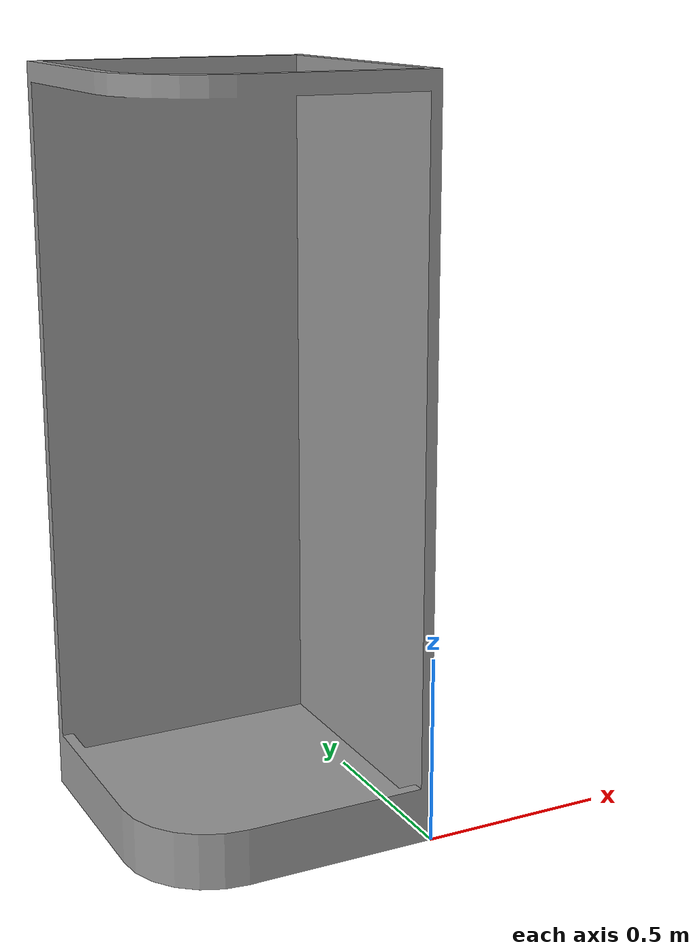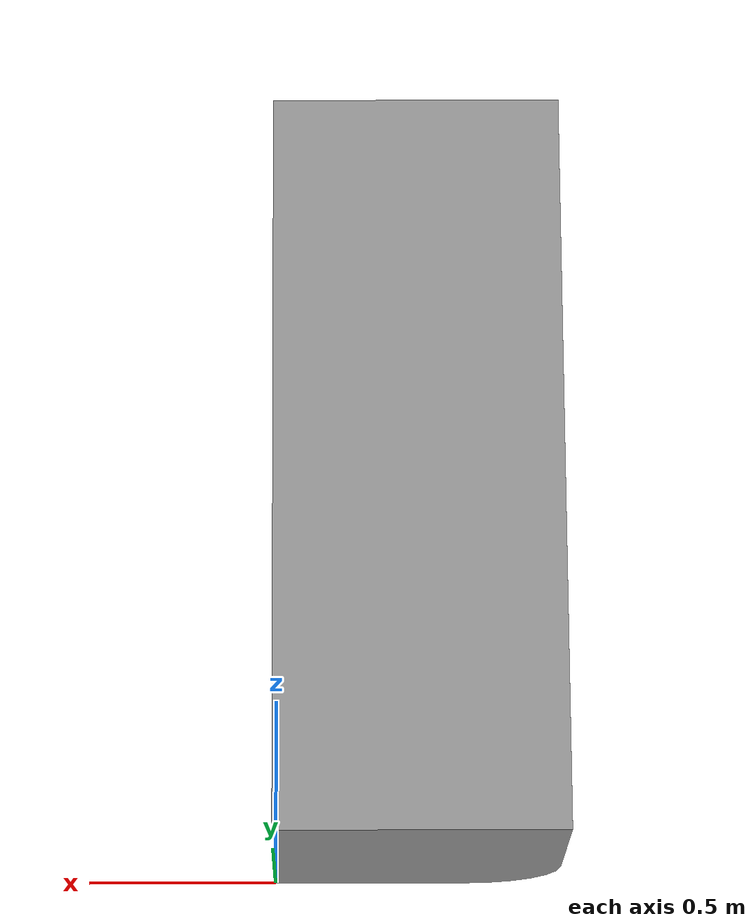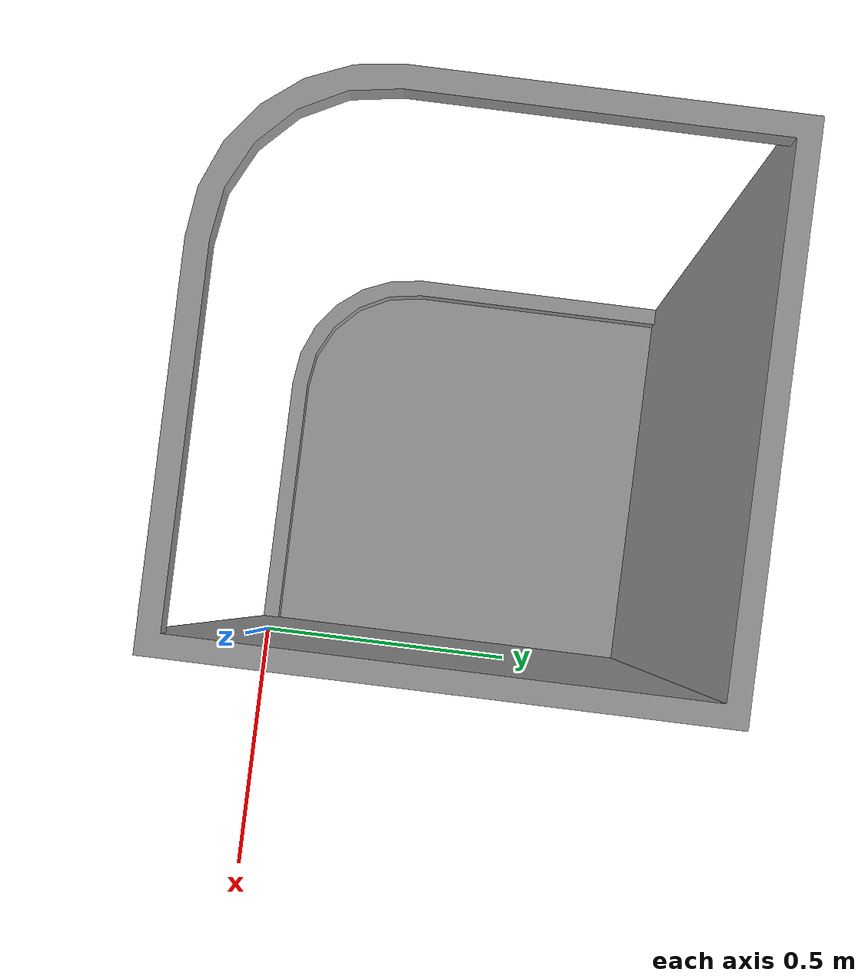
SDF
<?xml version='1.0'?>
<sdf version='1.6'>
  <model name='rai_shower'>
    <link name='link_0'>
      <pose frame=''>0 0 0 0 -0 0</pose>
      <visual name='visual'>
        <pose frame=''>0 0 0 0 -0 0</pose>
        <geometry>
          <mesh>
            <uri>model://rai_shower/meshes/rai_shower.STL</uri>
          </mesh>
        </geometry>
        <material>
          <lighting>1</lighting>
          <script>
            <uri>file://media/materials/scripts/gazebo.material</uri>
            <name>Gazebo/Grey</name>
          </script>
          <ambient>1 1 1 1</ambient>
          <diffuse>0.7 0.7 0.7 1</diffuse>
          <specular>0.01 0.01 0.01 1</specular>
          <emissive>0 0 0 1</emissive>
          <shader type='vertex'>
            <normal_map>__default__</normal_map>
          </shader>
        </material>
        <cast_shadows>1</cast_shadows>
        <transparency>0</transparency>
      </visual>
      <collision name='collision'>
        <pose frame=''>0 0 0 0 -0 0</pose>
        <geometry>
          <mesh>
            <uri>model://rai_shower/meshes/rai_shower.STL</uri>
          </mesh>
        </geometry>
      </collision>
    </link>
    <static>1</static>
    <allow_auto_disable>1</allow_auto_disable>
  </model>

</sdf>
